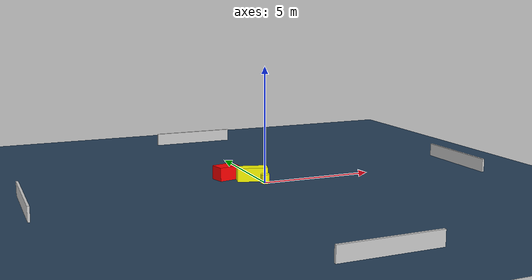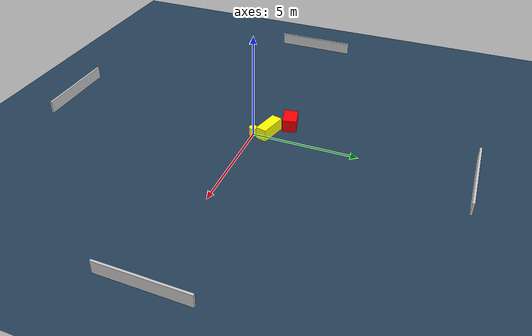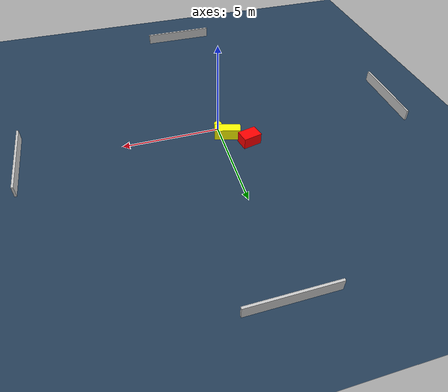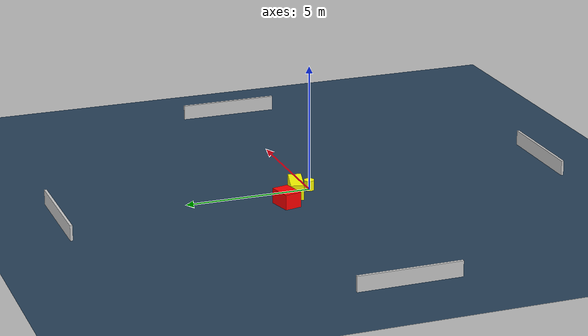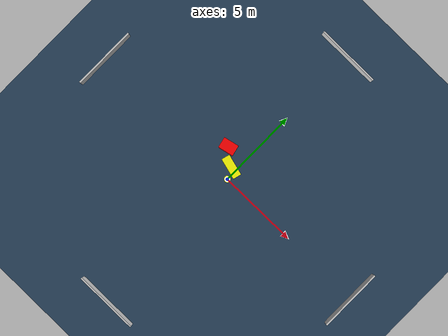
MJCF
<?xml version="1.0" ?>
<mujoco model="generated_environment">
  <option timestep="0.01" integrator="RK4" cone="elliptic"/>
  <default>
    <geom density="1"/>
  </default>
  <asset>
    <texture builtin="gradient" height="3072" name="skybox" rgb1="0.3 0.5 0.7" rgb2="0 0 0" type="skybox" width="512"/>
    <texture builtin="checker" height="300" name="groundplane" rgb1="0.2 0.3 0.4" rgb2="0.1 0.2 0.3" type="2d" width="300"/>
    <material name="groundplane" reflectance="0.2" texrepeat="5 5" texture="groundplane"/>
  </asset>
  <worldbody>
    <light dir="0 0 -1" directional="true" pos="0 0 1.5"/>
    <geom condim="3" friction="0.5 0.005 0.001" material="groundplane" name="floor" pos="0 0 0" size="0 0 0.05" type="plane"/>
    <body name="walls">
      <geom name="wall_1" condim="4" pos="-10.0 0.0 0.3" rgba="0.800000011920929 0.800000011920929 0.800000011920929 1.0" size="0.05 2.0 0.3" type="box"/>
      <geom name="wall_2" condim="4" pos="10.0 0.0 0.3" rgba="0.800000011920929 0.800000011920929 0.800000011920929 1.0" size="0.05 2.0 0.3" type="box"/>
      <geom name="wall_3" condim="4" pos="0.0 -10.0 0.3" rgba="0.800000011920929 0.800000011920929 0.800000011920929 1.0" size="2.0 0.05 0.3" type="box"/>
      <geom name="wall_4" condim="4" pos="0.0 10.0 0.3" rgba="0.800000011920929 0.800000011920929 0.800000011920929 1.0" size="2.0 0.05 0.3" type="box"/>
    </body>
    <body name="robot">
      <joint name="joint_x" type="slide" pos="0 0 0" axis="1 0 0"/>
      <joint name="joint_y" type="slide" pos="0 0 0" axis="0 1 0"/>
      <geom name="robot" type="cylinder" pos="0.0 0.0 0.2" size="0.2 0.2 0.0" mass="5.0" friction="1.0 0.005 0.0001" condim="4" rgba="1.0 1.0 0.0 1.0"/>
    </body>
    <body name="obstacle_1_movable">
      <geom name="obstacle_1_movable" condim="4" pos="-0.3281009087791258 0.6671432834011427 0.3" euler="0 0 345.2153979145917" friction="0.0 0.005 0.001" rgba="1.0 1.0 0.0 1.0" size="0.6638038559722927 0.26086705113490694 0.3" type="box" mass="0.1"/>
      <joint type="free"/>
    </body>
    <body name="obstacle_2_static">
      <geom name="obstacle_2_static" condim="4" pos="-1.27615926068854 1.3933019698859896 0.3" euler="0 0 192.8134692054746" friction="0.0 0.005 0.001" rgba="1.0 0.0 0.0 1.0" size="0.4813382118282998 0.3353798606517093 0.3" type="box"/>
    </body>
  </worldbody>
  <actuator>
    <motor name="actuator_x" joint="joint_x" gear="1" ctrlrange="-1 1"/>
    <motor name="actuator_y" joint="joint_y" gear="1" ctrlrange="-1 1"/>
  </actuator>
</mujoco>
